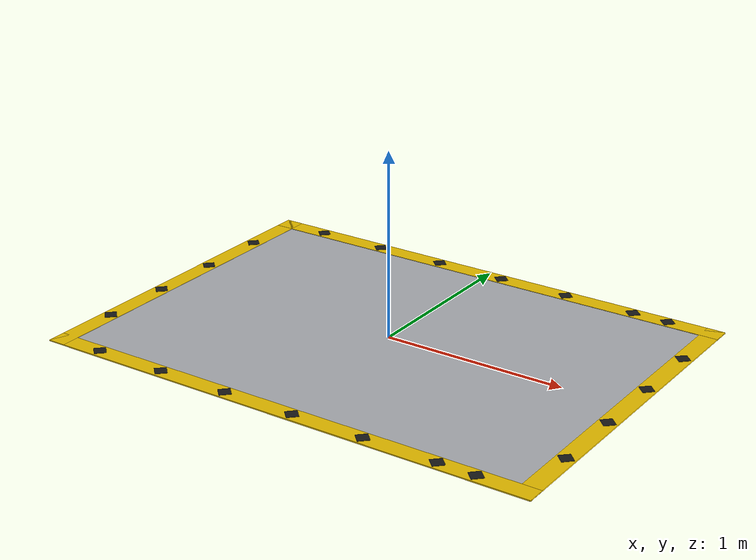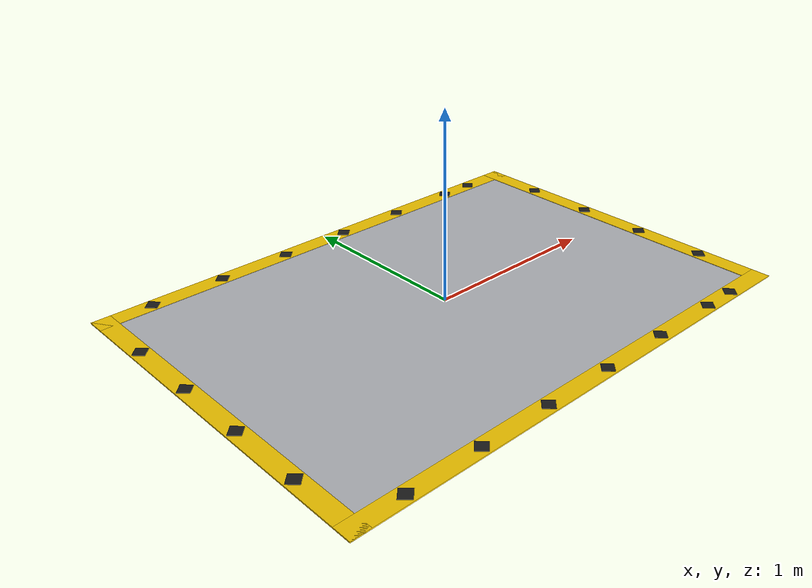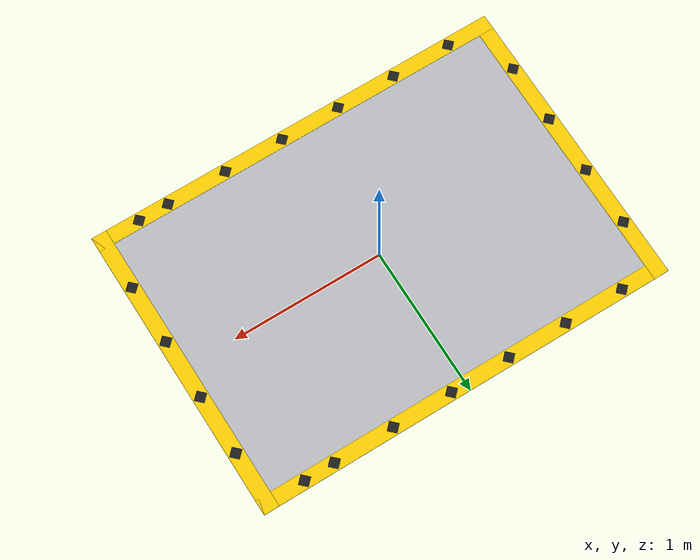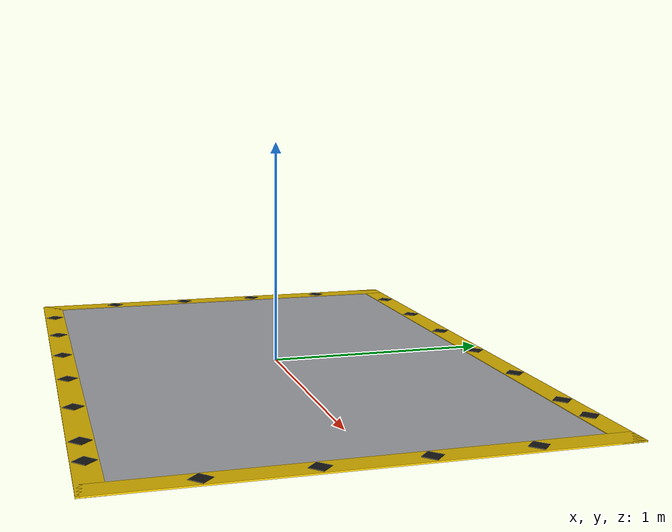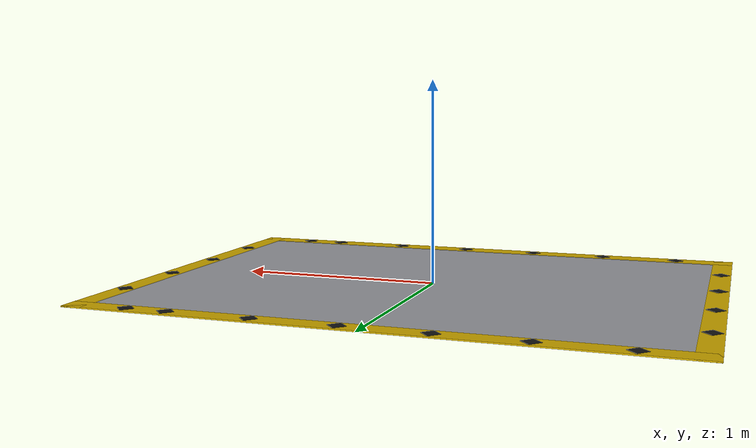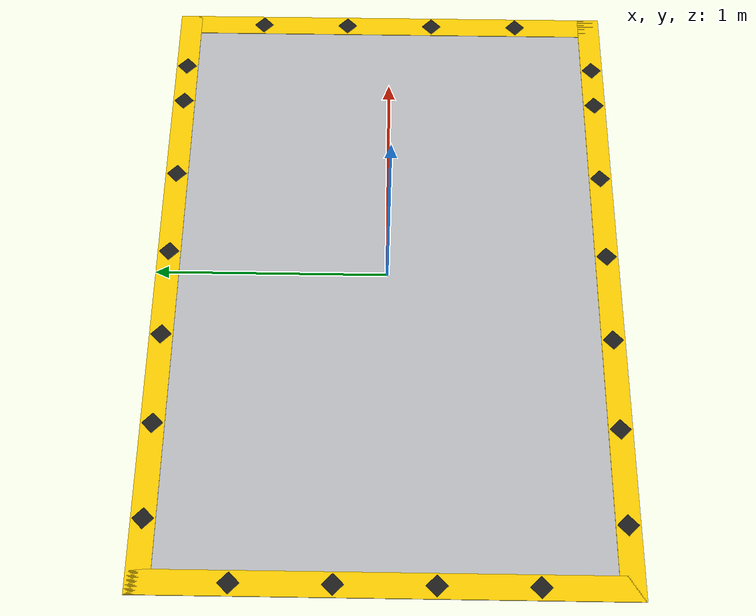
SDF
<?xml version="1.0"?>
<sdf version="1.9">
  <model name="drop_station">
    <static>true</static>
    <link name="pad_link">
      <!-- Main Interior Staging Floor -->
      <visual name="pad_interior">
        <pose>0 0 0.003 0 0 0</pose>
        <geometry><box><size>2.6 1.8 0.005</size></box></geometry>
        <material>
          <ambient>0.68 0.69 0.71 1.0</ambient>
          <diffuse>0.74 0.75 0.77 1.0</diffuse>
        </material>
      </visual>

      <!-- Yellow Base Border Frame (0.10m wide) -->
      <visual name="base_frame_n"><pose>0 0.95 0.005 0 0 0</pose><geometry><box><size>2.8 0.10 0.006</size></box></geometry><material><ambient>0.95 0.78 0.0 1</ambient><diffuse>1.0 0.82 0.0 1</diffuse></material></visual>
      <visual name="base_frame_s"><pose>0 -0.95 0.005 0 0 0</pose><geometry><box><size>2.8 0.10 0.006</size></box></geometry><material><ambient>0.95 0.78 0.0 1</ambient><diffuse>1.0 0.82 0.0 1</diffuse></material></visual>
      <visual name="base_frame_e"><pose>1.35 0 0.005 0 0 0</pose><geometry><box><size>0.10 2.0 0.006</size></box></geometry><material><ambient>0.95 0.78 0.0 1</ambient><diffuse>1.0 0.82 0.0 1</diffuse></material></visual>
      <visual name="base_frame_w"><pose>-1.35 0 0.005 0 0 0</pose><geometry><box><size>0.10 2.0 0.006</size></box></geometry><material><ambient>0.95 0.78 0.0 1</ambient><diffuse>1.0 0.82 0.0 1</diffuse></material></visual>

      <!-- Black Hazard Stripes at 45° — N border (contained cleanly within 0.10m yellow border) -->
      <visual name="hz_n_1"><pose>-1.1 0.95 0.007 0 0 0.7854</pose><geometry><box><size>0.062 0.062 0.006</size></box></geometry><material><ambient>0.08 0.08 0.08 1</ambient><diffuse>0.12 0.12 0.12 1</diffuse></material></visual>
      <visual name="hz_n_2"><pose>-0.7 0.95 0.007 0 0 0.7854</pose><geometry><box><size>0.062 0.062 0.006</size></box></geometry><material><ambient>0.08 0.08 0.08 1</ambient><diffuse>0.12 0.12 0.12 1</diffuse></material></visual>
      <visual name="hz_n_3"><pose>-0.3 0.95 0.007 0 0 0.7854</pose><geometry><box><size>0.062 0.062 0.006</size></box></geometry><material><ambient>0.08 0.08 0.08 1</ambient><diffuse>0.12 0.12 0.12 1</diffuse></material></visual>
      <visual name="hz_n_4"><pose>0.1 0.95 0.007 0 0 0.7854</pose><geometry><box><size>0.062 0.062 0.006</size></box></geometry><material><ambient>0.08 0.08 0.08 1</ambient><diffuse>0.12 0.12 0.12 1</diffuse></material></visual>
      <visual name="hz_n_5"><pose>0.5 0.95 0.007 0 0 0.7854</pose><geometry><box><size>0.062 0.062 0.006</size></box></geometry><material><ambient>0.08 0.08 0.08 1</ambient><diffuse>0.12 0.12 0.12 1</diffuse></material></visual>
      <visual name="hz_n_6"><pose>0.9 0.95 0.007 0 0 0.7854</pose><geometry><box><size>0.062 0.062 0.006</size></box></geometry><material><ambient>0.08 0.08 0.08 1</ambient><diffuse>0.12 0.12 0.12 1</diffuse></material></visual>
      <visual name="hz_n_7"><pose>1.1 0.95 0.007 0 0 0.7854</pose><geometry><box><size>0.062 0.062 0.006</size></box></geometry><material><ambient>0.08 0.08 0.08 1</ambient><diffuse>0.12 0.12 0.12 1</diffuse></material></visual>

      <!-- Black Hazard Stripes at 45° — S border -->
      <visual name="hz_s_1"><pose>-1.1 -0.95 0.007 0 0 0.7854</pose><geometry><box><size>0.062 0.062 0.006</size></box></geometry><material><ambient>0.08 0.08 0.08 1</ambient><diffuse>0.12 0.12 0.12 1</diffuse></material></visual>
      <visual name="hz_s_2"><pose>-0.7 -0.95 0.007 0 0 0.7854</pose><geometry><box><size>0.062 0.062 0.006</size></box></geometry><material><ambient>0.08 0.08 0.08 1</ambient><diffuse>0.12 0.12 0.12 1</diffuse></material></visual>
      <visual name="hz_s_3"><pose>-0.3 -0.95 0.007 0 0 0.7854</pose><geometry><box><size>0.062 0.062 0.006</size></box></geometry><material><ambient>0.08 0.08 0.08 1</ambient><diffuse>0.12 0.12 0.12 1</diffuse></material></visual>
      <visual name="hz_s_4"><pose>0.1 -0.95 0.007 0 0 0.7854</pose><geometry><box><size>0.062 0.062 0.006</size></box></geometry><material><ambient>0.08 0.08 0.08 1</ambient><diffuse>0.12 0.12 0.12 1</diffuse></material></visual>
      <visual name="hz_s_5"><pose>0.5 -0.95 0.007 0 0 0.7854</pose><geometry><box><size>0.062 0.062 0.006</size></box></geometry><material><ambient>0.08 0.08 0.08 1</ambient><diffuse>0.12 0.12 0.12 1</diffuse></material></visual>
      <visual name="hz_s_6"><pose>0.9 -0.95 0.007 0 0 0.7854</pose><geometry><box><size>0.062 0.062 0.006</size></box></geometry><material><ambient>0.08 0.08 0.08 1</ambient><diffuse>0.12 0.12 0.12 1</diffuse></material></visual>
      <visual name="hz_s_7"><pose>1.1 -0.95 0.007 0 0 0.7854</pose><geometry><box><size>0.062 0.062 0.006</size></box></geometry><material><ambient>0.08 0.08 0.08 1</ambient><diffuse>0.12 0.12 0.12 1</diffuse></material></visual>

      <!-- Black Hazard Stripes at 45° — E border -->
      <visual name="hz_e_1"><pose>1.35 -0.6 0.007 0 0 0.7854</pose><geometry><box><size>0.062 0.062 0.006</size></box></geometry><material><ambient>0.08 0.08 0.08 1</ambient><diffuse>0.12 0.12 0.12 1</diffuse></material></visual>
      <visual name="hz_e_2"><pose>1.35 -0.2 0.007 0 0 0.7854</pose><geometry><box><size>0.062 0.062 0.006</size></box></geometry><material><ambient>0.08 0.08 0.08 1</ambient><diffuse>0.12 0.12 0.12 1</diffuse></material></visual>
      <visual name="hz_e_3"><pose>1.35 0.2 0.007 0 0 0.7854</pose><geometry><box><size>0.062 0.062 0.006</size></box></geometry><material><ambient>0.08 0.08 0.08 1</ambient><diffuse>0.12 0.12 0.12 1</diffuse></material></visual>
      <visual name="hz_e_4"><pose>1.35 0.6 0.007 0 0 0.7854</pose><geometry><box><size>0.062 0.062 0.006</size></box></geometry><material><ambient>0.08 0.08 0.08 1</ambient><diffuse>0.12 0.12 0.12 1</diffuse></material></visual>

      <!-- Black Hazard Stripes at 45° — W border -->
      <visual name="hz_w_1"><pose>-1.35 -0.6 0.007 0 0 0.7854</pose><geometry><box><size>0.062 0.062 0.006</size></box></geometry><material><ambient>0.08 0.08 0.08 1</ambient><diffuse>0.12 0.12 0.12 1</diffuse></material></visual>
      <visual name="hz_w_2"><pose>-1.35 -0.2 0.007 0 0 0.7854</pose><geometry><box><size>0.062 0.062 0.006</size></box></geometry><material><ambient>0.08 0.08 0.08 1</ambient><diffuse>0.12 0.12 0.12 1</diffuse></material></visual>
      <visual name="hz_w_3"><pose>-1.35 0.2 0.007 0 0 0.7854</pose><geometry><box><size>0.062 0.062 0.006</size></box></geometry><material><ambient>0.08 0.08 0.08 1</ambient><diffuse>0.12 0.12 0.12 1</diffuse></material></visual>
      <visual name="hz_w_4"><pose>-1.35 0.6 0.007 0 0 0.7854</pose><geometry><box><size>0.062 0.062 0.006</size></box></geometry><material><ambient>0.08 0.08 0.08 1</ambient><diffuse>0.12 0.12 0.12 1</diffuse></material></visual>
    </link>
  </model>
</sdf>
